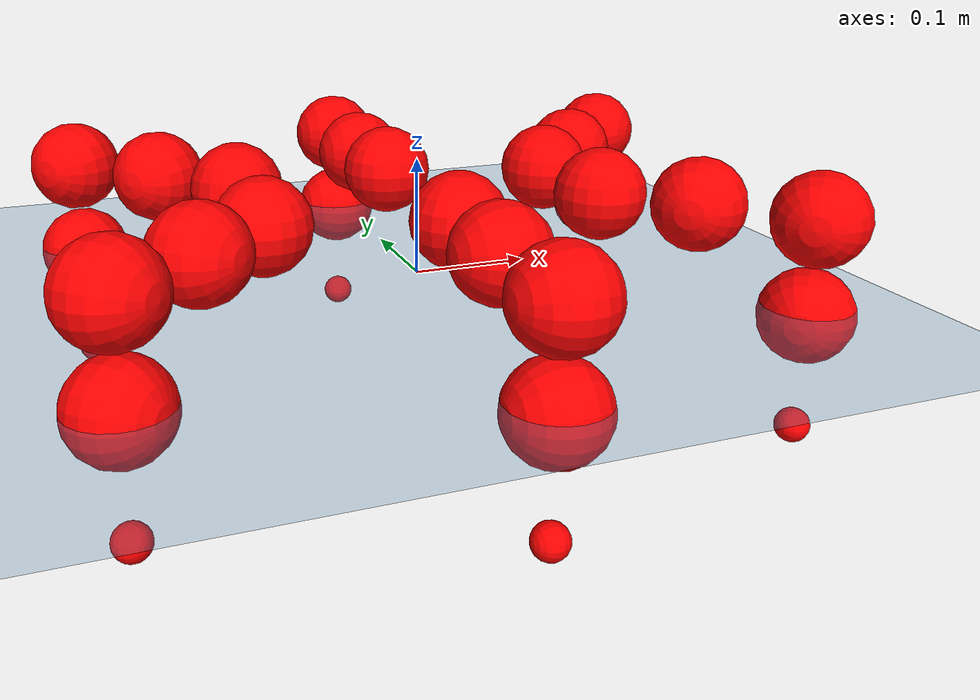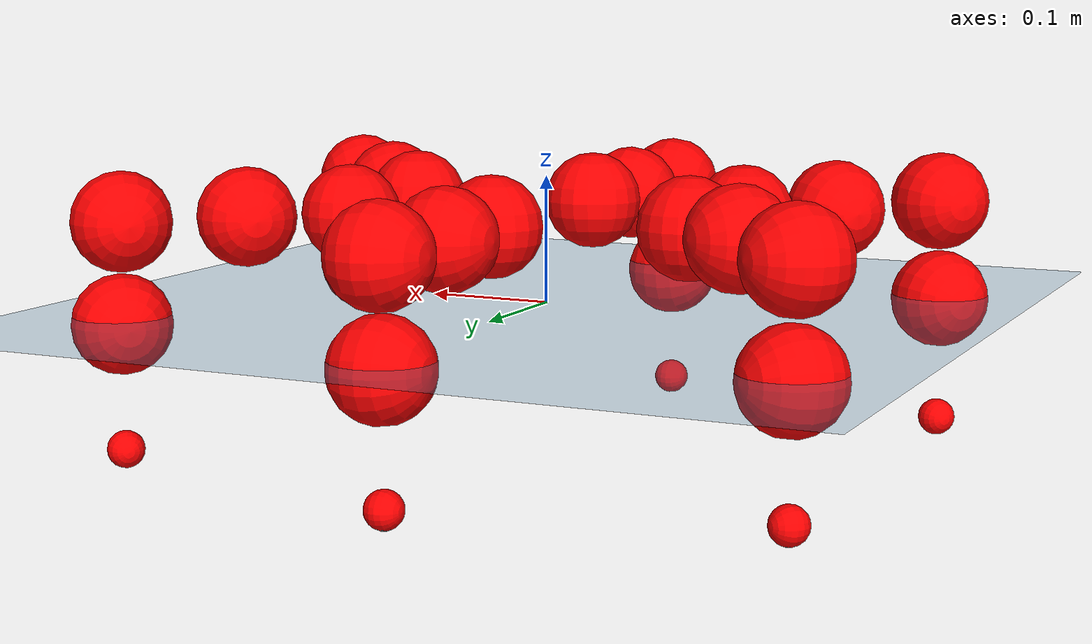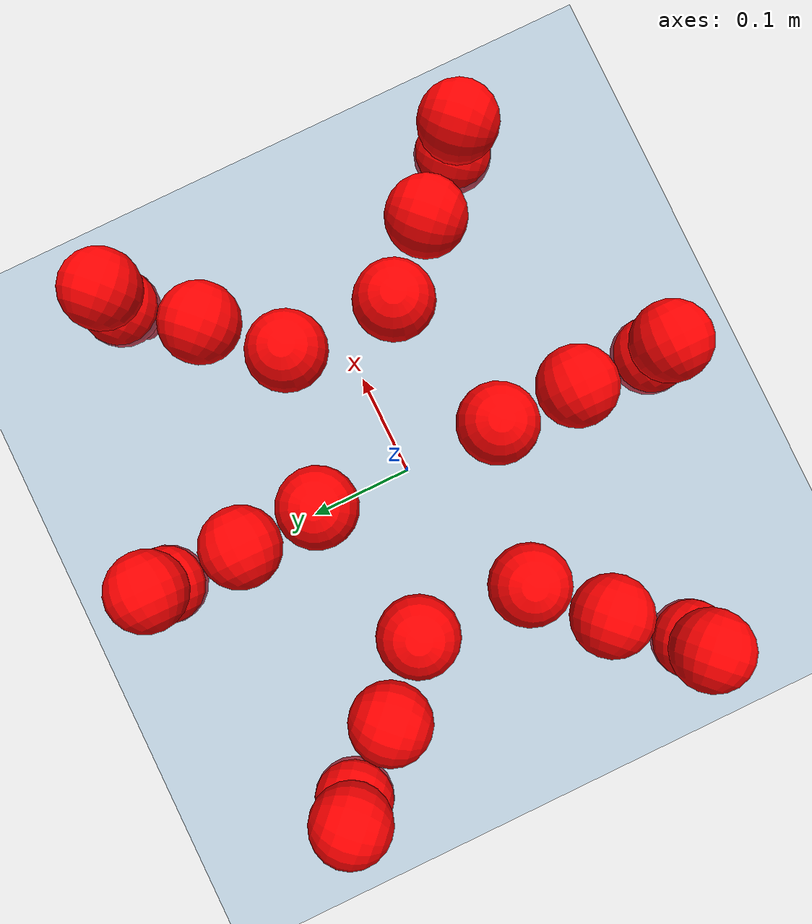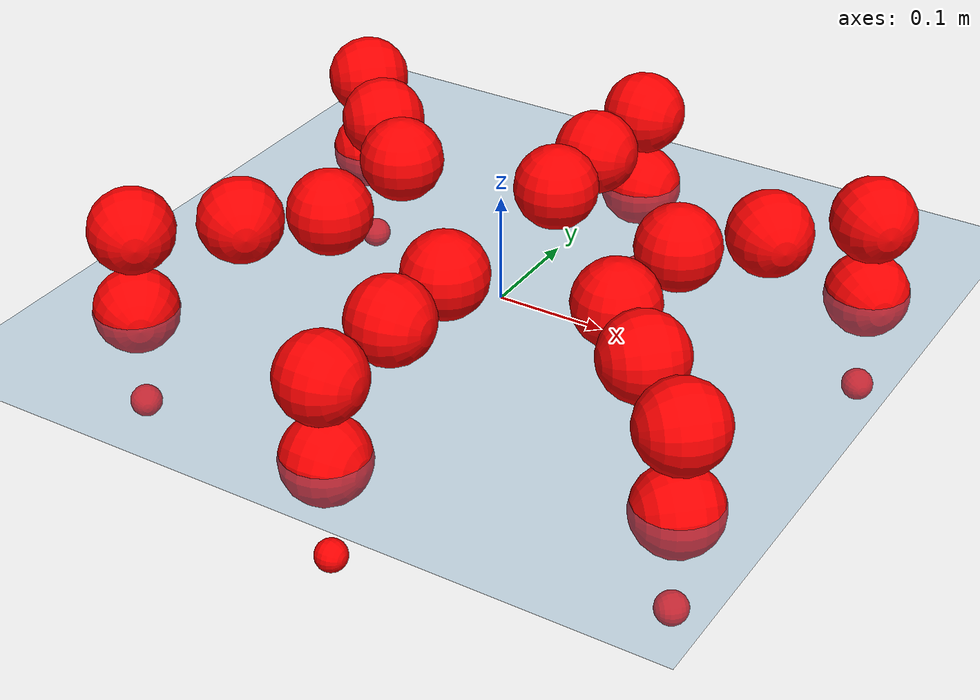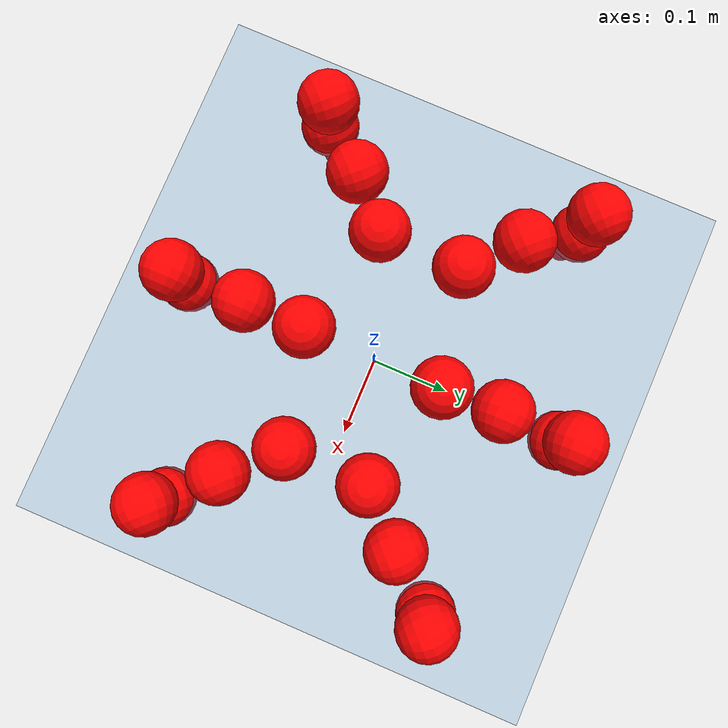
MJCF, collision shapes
<mujoco model="Golem">
  <compiler angle="radian" assetdir="assets" balanceinertia="true" inertiafromgeom="false"/>

  <option timestep="0.005" density="1.2" viscosity="2e-05"/>

  <size nkey="1"/>

  <visual>
    <quality shadowsize="8192"/>
    <map shadowclip="0.5"/>
  </visual>

  <default>
    <default class="/">
      <joint armature="0.01" damping="0.01" frictionloss="0.01"/>
      <geom contype="0" conaffinity="0" group="1" solref="-1000 -80"/>
      <site size="0.01 0.005 0.005" group="5"/>
      <general forcelimited="true" biastype="affine" gainprm="25" biasprm="0 -25 -0.5"/>
      <default class="visual">
        <geom type="mesh" group="2"/>
      </default>
      <default class="collision">
        <geom group="3"/>
      </default>
      <default class="foot">
        <geom size="0.01 0 0" condim="6" group="4" priority="1" solimp="0.015 1 0.01"/>
      </default>
      <default class="reward_collision_sphere">
        <geom group="5" rgba="1 0 0 1"/>
      </default>
    </default>
  </default>

  <asset>
    <texture type="skybox" colorspace="auto" name="//unnamed_texture_0" builtin="gradient" rgb1="0.95 0.95 0.95" rgb2="0.95 0.95 0.95" width="100" height="600"/>
    <texture type="2d" colorspace="auto" name="texplane" builtin="checker" rgb1="0.345 0.575 0.748" rgb2="0.345 0.575 0.748" markrgb="1 1 1" width="512" height="512"/>
    <material name="MatPlane" class="/" texture="texplane" texuniform="true" texrepeat="2 2" specular="0.9"/>
    <mesh name="body" class="/" file="body.stl" scale="0.001 0.001 0.001"/>
    <mesh name="coxa" class="/" file="coxa.stl" scale="0.001 0.001 0.001"/>
    <mesh name="femur" class="/" file="femur.stl" scale="0.001 0.001 0.001"/>
    <mesh name="tibia" class="/" file="tibia.stl" scale="0.001 0.001 0.001"/>
    <mesh name="tarsus" class="/" file="tarsus.stl" scale="0.001 0.001 0.001"/>
  </asset>

  <worldbody>
    <geom name="floor" class="/" size="100 100 0.125" type="plane" group="0" material="MatPlane"/>
    <light name="toplight_shadow" class="/" pos="0 0 5" dir="0.0990148 0.0990148 -0.990148" type="directional" ambient="0.04 0.04 0.04" diffuse="0.55 0.55 0.55" specular="0.12 0.12 0.12"/>
    <light name="toplight_fill" class="/" pos="0 0 5" dir="0.0990148 0.0990148 -0.990148" type="directional" castshadow="false" ambient="0.04 0.04 0.04" diffuse="0.3 0.3 0.3" specular="0.08 0.08 0.08"/>
    <body name="trunk" pos="-9.82033e-05 0.00062014 -0.0028121" quat="0.999999 0.000814144 0.000314984 -0.0010292">
      <inertial pos="0.00231139 -0.0022448 -0.00061944" quat="0.999983 0.00423082 0.00380992 0.00105989" mass="3.26324" diaginertia="0.00623057 0.0053342 0.0180989"/>
      <joint name="//unnamed_joint_0" type="free"/>
      <geom name="//unnamed_geom_1" class="/" pos="0 0 0.072066" quat="1 0 0 0" type="mesh" rgba="0.9 0.9 0.9 1" mesh="body"/>
      <site name="imu" class="/" pos="0.116266 0.0130912 0.12012" size="0.00977198"/>
      <camera name="track" class="/" pos="0 -1.78475 0" quat="0.707107 0.707107 0 0" mode="trackcom"/>
      <camera name="ego_camera" class="/" pos="0.118714 0 0.112603" quat="-0.5 -0.5 0.5 0.5"/>
      <body name="coxa_RR" pos="-0.163602 -0.0743807 0.0740919" quat="0.382819 -0.000612166 0.00011448 -0.923823">
        <inertial pos="0.00276739 0.00111805 -0.00236425" quat="0.999948 -0.00346178 0.00747969 0.00599687" mass="0.191069" diaginertia="0.00624461 0.00577999 0.0182099"/>
        <joint name="coxa_joint_RR" class="/" pos="0 0 0" axis="0.00169099 0.00157321 -0.999997" stiffness="0.00159785" range="-3.09958 3.11909" armature="0.00935991" damping="0" frictionloss="0.0105469"/>
        <geom name="//unnamed_geom_2" class="/" type="mesh" rgba="0.2 0.2 0.2 1" mesh="coxa"/>
        <geom name="//unnamed_geom_3" class="reward_collision_sphere" size="0.0390879" pos="-0.0273956 0 0"/>
        <body name="femur_RR" pos="0.0515221 -0.00166211 0.00112254" quat="0.499965 -0.5008 0.499571 0.499663">
          <inertial pos="0.000326798 0.00164686 0.00253781" quat="0.999903 -0.00224734 -0.011394 0.00773356" mass="0.178761" diaginertia="0.00636737 0.00533525 0.0176201"/>
          <joint name="femur_joint_RR" class="/" pos="0 0 0" axis="0.004447 -0.00223555 -0.999988" range="-3.11695 3.1157" armature="0.0109847" damping="0.010192" frictionloss="0.00987012"/>
          <geom name="//unnamed_geom_4" class="/" type="mesh" rgba="0.9 0.9 0.9 1" mesh="femur"/>
          <geom name="//unnamed_geom_5" class="reward_collision_sphere" size="0.0390879"/>
          <body name="tibia_RR" pos="-0.00284799 -0.0944739 0.000834629" quat="3.11972e-05 1 6.22221e-05 -0.000150423">
            <inertial pos="-0.000632333 0.00211797 -0.000504335" quat="1 0.000405241 -0.000148265 -0.000612854" mass="0.180892" diaginertia="0.00618112 0.00545133 0.0176895"/>
            <joint name="tibia_joint_RR" class="/" pos="0 0 0" axis="-0.00437526 -0.0110047 0.99993" range="-3.09881 3.13468" armature="0.00836351" damping="0.00985602" frictionloss="0.010342"/>
            <geom name="//unnamed_geom_6" class="/" type="mesh" rgba="0.2 0.2 0.2 1" mesh="tibia"/>
            <geom name="//unnamed_geom_7" class="reward_collision_sphere" size="0.0390879"/>
            <body name="tarsus_RR" pos="0.0796906 0.00285634 -0.00169821" quat="0.999999 -0.000525079 -0.000883292 0.000798543">
              <inertial pos="0.0573659 0.000919769 0.00288202" quat="0.500417 0.509099 0.497634 0.492707" mass="0.18123" diaginertia="0.00611731 0.00544248 0.0178274"/>
              <joint name="tarsus_joint_RR" class="/" pos="0 0 0" axis="0.014728 0.00216093 0.999889" range="-3.19178 3.15962" armature="0.00921967" damping="0.0167444" frictionloss="0.00931518"/>
              <geom name="//unnamed_geom_8" class="/" type="mesh" rgba="0.9 0.9 0.9 1" mesh="tarsus"/>
              <geom name="foot_1" class="foot" size="0.00883422" pos="0.102277 0 0" quat="0 -0.707107 0 0.707107"/>
              <geom name="//unnamed_geom_10" class="reward_collision_sphere" size="0.0390879"/>
              <geom name="//unnamed_geom_11" class="reward_collision_sphere" size="0.014658" pos="0.0981677 0 0"/>
              <site name="foot_1" class="foot" pos="0.102277 0 0" quat="0 -0.707107 0 0.707107" size="0.00977198"/>
            </body>
          </body>
        </body>
      </body>
      <body name="coxa_RM" pos="0.00119968 -0.12025 0.0747823" quat="0.707047 -2.84193e-05 -9.12105e-06 -0.707167">
        <inertial pos="-0.000813967 -0.000199127 -0.0024761" quat="0.999971 0.000678349 -0.00412516 0.00639648" mass="0.184312" diaginertia="0.00639589 0.00590427 0.0190732"/>
        <joint name="coxa_joint_RM" class="/" pos="0 0 0" axis="-0.00579224 -0.00389307 -0.999976" range="-3.1407 3.0876" armature="0.00946994" damping="0.0126096" frictionloss="0.0111509"/>
        <geom name="//unnamed_geom_12" class="/" type="mesh" rgba="0.2 0.2 0.2 1" mesh="coxa"/>
        <geom name="//unnamed_geom_13" class="reward_collision_sphere" size="0.0390879" pos="-0.0273956 0 0"/>
        <body name="femur_RM" pos="0.0532339 -0.000541513 -0.00158574" quat="0.499681 -0.500047 0.499842 0.500429">
          <inertial pos="8.75042e-05 0.00273682 0.000535398" quat="0.999995 0.0024576 -0.00200902 0.00058777" mass="0.193494" diaginertia="0.00617658 0.00570362 0.0176472"/>
          <joint name="femur_joint_RM" class="/" pos="0 0 0" axis="-0.000112221 -8.53196e-05 -1" range="-3.08635 3.18701" armature="0.0112005" damping="0.0195892" frictionloss="0.0109276"/>
          <geom name="//unnamed_geom_14" class="/" type="mesh" rgba="0.9 0.9 0.9 1" mesh="femur"/>
          <geom name="//unnamed_geom_15" class="reward_collision_sphere" size="0.0390879"/>
          <body name="tibia_RM" pos="-5.41127e-05 -0.096119 2.00009e-05" quat="-0.00031925 1 -0.000478638 -0.000276492">
            <inertial pos="-0.00101887 6.75453e-05 0.00281138" quat="0.999999 -4.47912e-05 0.000633652 0.00121182" mass="0.191372" diaginertia="0.0063748 0.00561639 0.0175376"/>
            <joint name="tibia_joint_RM" class="/" pos="0 0 0" axis="0.00885976 0.00212691 0.999958" range="-3.1021 3.19614" armature="0.0088248" damping="0.0194718" frictionloss="0.0108001"/>
            <geom name="//unnamed_geom_16" class="/" type="mesh" rgba="0.2 0.2 0.2 1" mesh="tibia"/>
            <geom name="//unnamed_geom_17" class="reward_collision_sphere" size="0.0390879"/>
            <body name="tarsus_RM" pos="0.0792963 -0.00103667 0.000450007" quat="0.999999 0.00115114 -0.000748869 -0.000425365">
              <inertial pos="0.0551537 -0.00117368 0.000541865" quat="0.499868 0.500111 0.500184 0.499837" mass="0.198317" diaginertia="0.00659214 0.00580376 0.0185602"/>
              <joint name="tarsus_joint_RM" class="/" pos="0 0 0" axis="-0.0077444 -0.00337101 0.999964" range="-3.10825 3.14192" armature="0.00869701" damping="0.0164659" frictionloss="0.00983406"/>
              <geom name="//unnamed_geom_18" class="/" type="mesh" rgba="0.9 0.9 0.9 1" mesh="tarsus"/>
              <geom name="foot_2" class="foot" size="0.00874495" pos="0.102277 0 0" quat="0 -0.707107 0 0.707107"/>
              <geom name="//unnamed_geom_20" class="reward_collision_sphere" size="0.0390879"/>
              <geom name="//unnamed_geom_21" class="reward_collision_sphere" size="0.014658" pos="0.0981677 0 0"/>
              <site name="foot_2" class="foot" pos="0.102277 0 0" quat="0 -0.707107 0 0.707107" size="0.00977198"/>
            </body>
          </body>
        </body>
      </body>
      <body name="coxa_RF" pos="0.164094 -0.075368 0.0739712" quat="0.92407 -0.000566813 0.000332835 -0.382222">
        <inertial pos="-0.00193003 -0.0011485 -0.00261808" quat="0.999903 0.0027515 0.00423671 0.0129519" mass="0.185041" diaginertia="0.00638895 0.00566246 0.0185081"/>
        <joint name="coxa_joint_RF" class="/" pos="0 0 0" axis="0.000276346 -0.000767344 -1" range="-3.16067 3.08229" armature="0.0100267" damping="0.0156333" frictionloss="0.0108984"/>
        <geom name="//unnamed_geom_22" class="/" type="mesh" rgba="0.2 0.2 0.2 1" mesh="coxa"/>
        <geom name="//unnamed_geom_23" class="reward_collision_sphere" size="0.0390879" pos="-0.0273956 0 0"/>
        <body name="femur_RF" pos="0.0556876 -0.00205696 0.00119335" quat="0.500748 -0.500069 0.500406 0.498775">
          <inertial pos="-0.00067165 -8.35767e-05 -0.00031157" quat="0.999917 0.0119771 0.0003187 -0.00477651" mass="0.186469" diaginertia="0.00613626 0.00552953 0.0174562"/>
          <joint name="femur_joint_RF" class="/" pos="0 0 0" axis="0.00345393 -0.00721843 -0.999968" stiffness="0.000288636" range="-3.09588 3.14308" armature="0.00932954" damping="0.00917565" frictionloss="0.00929203"/>
          <geom name="//unnamed_geom_24" class="/" type="mesh" rgba="0.9 0.9 0.9 1" mesh="femur"/>
          <geom name="//unnamed_geom_25" class="reward_collision_sphere" size="0.0390879"/>
          <body name="tibia_RF" pos="0.0017403 -0.094368 0.00168455" quat="-0.000283542 1 0.00013632 -0.000783297">
            <inertial pos="0.000449399 -0.00211491 -0.00270444" quat="0.99993 -0.00831779 -0.00754699 -0.00369117" mass="0.188471" diaginertia="0.00613554 0.00558004 0.0182008"/>
            <joint name="tibia_joint_RF" class="/" pos="0 0 0" axis="0.0102109 -0.000875772 0.999947" stiffness="0.0141213" range="-3.1873 3.12652" armature="0.00942626" damping="0.0250209" frictionloss="0.00844009"/>
            <geom name="//unnamed_geom_26" class="/" type="mesh" rgba="0.2 0.2 0.2 1" mesh="tibia"/>
            <geom name="//unnamed_geom_27" class="reward_collision_sphere" size="0.0390879"/>
            <body name="tarsus_RF" pos="0.0807719 -0.00250103 -0.000953069" quat="1 3.66463e-05 -1.37751e-05 -1.8189e-05">
              <inertial pos="0.0556219 -0.000369403 0.00107438" quat="0.495753 0.497346 0.50167 0.505175" mass="0.179366" diaginertia="0.0059984 0.00531796 0.0174239"/>
              <joint name="tarsus_joint_RF" class="/" pos="0 0 0" axis="-0.00886801 0.000129797 0.999961" stiffness="0.00392018" range="-3.12431 3.14029" armature="0.00935052" damping="0.00154515" frictionloss="0.0110648"/>
              <geom name="//unnamed_geom_28" class="/" type="mesh" rgba="0.9 0.9 0.9 1" mesh="tarsus"/>
              <geom name="foot_3" class="foot" size="0.0103752" pos="0.102277 0 0" quat="0 -0.707107 0 0.707107"/>
              <geom name="//unnamed_geom_30" class="reward_collision_sphere" size="0.0390879"/>
              <geom name="//unnamed_geom_31" class="reward_collision_sphere" size="0.014658" pos="0.0981677 0 0"/>
              <site name="foot_3" class="foot" pos="0.102277 0 0" quat="0 -0.707107 0 0.707107" size="0.00977198"/>
            </body>
          </body>
        </body>
      </body>
      <body name="coxa_LR" pos="-0.162011 0.0760431 0.0760306" quat="0.382531 -0.000714165 -0.00113058 0.923942">
        <inertial pos="-0.00227527 0.00246671 -0.00225767" quat="0.999999 -0.000670268 -0.000769141 -0.00028677" mass="0.187786" diaginertia="0.00623674 0.00543296 0.0179714"/>
        <joint name="coxa_joint_LR" class="/" pos="0 0 0" axis="0.00302331 0.0162586 -0.999863" stiffness="0.0129182" range="-3.18288 3.18456" armature="0.00949435" damping="0.0164537" frictionloss="0.0111553"/>
        <geom name="//unnamed_geom_32" class="/" type="mesh" rgba="0.2 0.2 0.2 1" mesh="coxa"/>
        <geom name="//unnamed_geom_33" class="reward_collision_sphere" size="0.0390879" pos="-0.0273956 0 0"/>
        <body name="femur_LR" pos="0.0534918 0.00187733 0.00237871" quat="0.500387 -0.49936 0.500065 0.500187">
          <inertial pos="-0.00123467 0.0027628 0.00118465" quat="0.999953 0.00460093 0.00768033 0.00359113" mass="0.180908" diaginertia="0.00655327 0.00557074 0.0174147"/>
          <joint name="femur_joint_LR" class="/" pos="0 0 0" axis="-0.00196712 -0.00502467 0.999985" range="-3.18662 3.17354" armature="0.0103393" damping="0.00695513" frictionloss="0.00974905"/>
          <geom name="//unnamed_geom_34" class="/" type="mesh" rgba="0.9 0.9 0.9 1" mesh="femur"/>
          <geom name="//unnamed_geom_35" class="reward_collision_sphere" size="0.0390879"/>
          <body name="tibia_LR" pos="0.00138756 -0.097026 -0.00331999" quat="0.000216751 1 -0.000682523 0.000148612">
            <inertial pos="-0.00249097 0.00142014 0.00287257" quat="0.999899 0.007585 -0.0104959 0.00578687" mass="0.192328" diaginertia="0.00633712 0.00582255 0.0176904"/>
            <joint name="tibia_joint_LR" class="/" pos="0 0 0" axis="-0.00239416 0.00603533 -0.999979" range="-3.10193 3.19539" armature="0.00833588" damping="0" frictionloss="0.00977179"/>
            <geom name="//unnamed_geom_36" class="/" type="mesh" rgba="0.2 0.2 0.2 1" mesh="tibia"/>
            <geom name="//unnamed_geom_37" class="reward_collision_sphere" size="0.0390879"/>
            <body name="tarsus_LR" pos="0.0808853 -0.00121672 0.000980286" quat="1 2.36165e-05 -8.16914e-06 -1.70079e-05">
              <inertial pos="0.0543268 -0.00232954 -0.000352818" quat="0.500002 0.500019 0.499962 0.500017" mass="0.178578" diaginertia="0.0062588 0.00565247 0.0183819"/>
              <joint name="tarsus_joint_LR" class="/" pos="0 0 0" axis="0.00116652 -0.000328933 -0.999999" stiffness="0.00541273" range="-3.13989 3.19469" armature="0.0096607" damping="0.00502256" frictionloss="0.00844344"/>
              <geom name="//unnamed_geom_38" class="/" type="mesh" rgba="0.9 0.9 0.9 1" mesh="tarsus"/>
              <geom name="foot_4" class="foot" size="0.0108252" pos="0.102277 0 0" quat="0.707107 0 -0.707107 0"/>
              <geom name="//unnamed_geom_40" class="reward_collision_sphere" size="0.0390879"/>
              <geom name="//unnamed_geom_41" class="reward_collision_sphere" size="0.014658" pos="0.0981677 0 0"/>
              <site name="foot_4" class="foot" pos="0.102277 0 0" quat="0.707107 0 -0.707107 0" size="0.00977198"/>
            </body>
          </body>
        </body>
      </body>
      <body name="coxa_LM" pos="0.0027594 0.116938 0.0732493" quat="0.707162 4.47748e-05 7.41147e-05 0.707052">
        <inertial pos="0.000298048 -0.000329432 -0.00186969" quat="0.999998 -0.00110487 0.000882881 0.00152486" mass="0.183916" diaginertia="0.00658378 0.00567628 0.0182058"/>
        <joint name="coxa_joint_LM" class="/" pos="0 0 0" axis="0.0135508 -0.00122856 -0.999907" range="-3.13106 3.1513" armature="0.0104402" damping="0.00514546" frictionloss="0.00967094"/>
        <geom name="//unnamed_geom_42" class="/" type="mesh" rgba="0.2 0.2 0.2 1" mesh="coxa"/>
        <geom name="//unnamed_geom_43" class="reward_collision_sphere" size="0.0390879" pos="-0.0273956 0 0"/>
        <body name="femur_LM" pos="0.0509916 0.00257645 -0.000407352" quat="0.49983 -0.499425 0.500518 0.500227">
          <inertial pos="-0.00274212 0.000294922 -0.00141543" quat="0.999901 0.00983378 0.00221201 0.00976968" mass="0.18024" diaginertia="0.00618457 0.00543702 0.0175"/>
          <joint name="femur_joint_LM" class="/" pos="0 0 0" axis="0.0104399 0.00234659 0.999943" stiffness="0.00553857" range="-3.13273 3.1077" armature="0.00854732" damping="0" frictionloss="0.00849535"/>
          <geom name="//unnamed_geom_44" class="/" type="mesh" rgba="0.9 0.9 0.9 1" mesh="femur"/>
          <geom name="//unnamed_geom_45" class="reward_collision_sphere" size="0.0390879"/>
          <body name="tibia_LM" pos="-0.000510409 -0.0938997 -0.00050886" quat="-0.000331349 0.999999 0.000389588 0.00116125">
            <inertial pos="0.00229107 0.000362089 -0.000245762" quat="0.999996 0.00202373 0.0011953 -0.00159265" mass="0.189985" diaginertia="0.00627342 0.00554214 0.0177457"/>
            <joint name="tibia_joint_LM" class="/" pos="0 0 0" axis="0.0113948 0.00793333 -0.999904" range="-3.08665 3.08859" armature="0.010155" damping="0.00468296" frictionloss="0.0110918"/>
            <geom name="//unnamed_geom_46" class="/" type="mesh" rgba="0.2 0.2 0.2 1" mesh="tibia"/>
            <geom name="//unnamed_geom_47" class="reward_collision_sphere" size="0.0390879"/>
            <body name="tarsus_LM" pos="0.0785084 -0.00168768 0.000290969" quat="1 -0.000172946 7.04128e-06 0.000173098">
              <inertial pos="0.0524415 -0.00217264 0.000423952" quat="0.49969 0.498153 0.50962 0.492383" mass="0.18391" diaginertia="0.00621387 0.00550517 0.0175022"/>
              <joint name="tarsus_joint_LM" class="/" pos="0 0 0" axis="-0.000338069 0.0139587 -0.999903" stiffness="0.00993237" range="-3.1395 3.14422" armature="0.0098073" damping="0.0167544" frictionloss="0.010565"/>
              <geom name="//unnamed_geom_48" class="/" type="mesh" rgba="0.9 0.9 0.9 1" mesh="tarsus"/>
              <geom name="foot_5" class="foot" size="0.0108677" pos="0.102277 0 0" quat="0.707107 0 -0.707107 0"/>
              <geom name="//unnamed_geom_50" class="reward_collision_sphere" size="0.0390879"/>
              <geom name="//unnamed_geom_51" class="reward_collision_sphere" size="0.014658" pos="0.0981677 0 0"/>
              <site name="foot_5" class="foot" pos="0.102277 0 0" quat="0.707107 0 -0.707107 0" size="0.00977198"/>
            </body>
          </body>
        </body>
      </body>
      <body name="coxa_LF" pos="0.164719 0.072759 0.0719809" quat="0.923899 -0.000415766 0.000357691 0.382636">
        <inertial pos="-0.0019446 -0.00119028 -0.00275914" quat="0.99999 -0.000138769 -0.0027014 0.00353346" mass="0.180186" diaginertia="0.00614074 0.00537141 0.0180922"/>
        <joint name="coxa_joint_LF" class="/" pos="0 0 0" axis="-0.0065624 -0.00386055 -0.999971" range="-3.19265 3.14215" armature="0.0105691" damping="0.0145444" frictionloss="0.00840488"/>
        <geom name="//unnamed_geom_52" class="/" type="mesh" rgba="0.2 0.2 0.2 1" mesh="coxa"/>
        <geom name="//unnamed_geom_53" class="reward_collision_sphere" size="0.0390879" pos="-0.0273956 0 0"/>
        <body name="femur_LF" pos="0.0563231 0.00206004 0.00112449" quat="0.499742 -0.501134 0.49957 0.499553">
          <inertial pos="-7.72032e-05 -0.00288861 0.000843711" quat="1 0.000161064 0.000541059 -2.58234e-05" mass="0.183273" diaginertia="0.00601323 0.0054993 0.0175167"/>
          <joint name="femur_joint_LF" class="/" pos="0 0 0" axis="0.00879473 -0.00914723 0.999919" range="-3.18625 3.19432" armature="0.00964821" damping="0.00107205" frictionloss="0.00978898"/>
          <geom name="//unnamed_geom_54" class="/" type="mesh" rgba="0.9 0.9 0.9 1" mesh="femur"/>
          <geom name="//unnamed_geom_55" class="reward_collision_sphere" size="0.0390879"/>
          <body name="tibia_LF" pos="-0.000157335 -0.0968248 0.000868809" quat="0.000699253 0.999999 -0.000703012 -0.000819753">
            <inertial pos="0.00264525 0.00242838 -0.00248038" quat="0.999988 -0.00483646 0.000188595 0.00116442" mass="0.192341" diaginertia="0.00610058 0.00567018 0.0174162"/>
            <joint name="tibia_joint_LF" class="/" pos="0 0 0" axis="-0.00989807 0.0080058 -0.999919" stiffness="0.00429648" range="-3.16004 3.08421" armature="0.00896071" damping="0.0108417" frictionloss="0.0101029"/>
            <geom name="//unnamed_geom_56" class="/" type="mesh" rgba="0.2 0.2 0.2 1" mesh="tibia"/>
            <geom name="//unnamed_geom_57" class="reward_collision_sphere" size="0.0390879"/>
            <body name="tarsus_LF" pos="0.078401 0.00191681 -0.00289327" quat="1 -0.000124855 -6.3703e-05 -9.82756e-05">
              <inertial pos="0.0542911 0.000936857 -0.00056663" quat="0.498976 0.497275 0.499283 0.504438" mass="0.182062" diaginertia="0.00626801 0.00565639 0.0183273"/>
              <joint name="tarsus_joint_LF" class="/" pos="0 0 0" axis="0.00276543 -0.000724958 -0.999996" stiffness="0.0270804" range="-3.09326 3.08264" armature="0.00956155" damping="0.032167" frictionloss="0.00867578"/>
              <geom name="//unnamed_geom_58" class="/" type="mesh" rgba="0.9 0.9 0.9 1" mesh="tarsus"/>
              <geom name="foot_6" class="foot" size="0.0101369" pos="0.102277 0 0" quat="0.707107 0 -0.707107 0"/>
              <geom name="//unnamed_geom_60" class="reward_collision_sphere" size="0.0390879"/>
              <geom name="//unnamed_geom_61" class="reward_collision_sphere" size="0.014658" pos="0.0981677 0 0"/>
              <site name="foot_6" class="foot" pos="0.102277 0 0" quat="0.707107 0 -0.707107 0" size="0.00977198"/>
            </body>
          </body>
        </body>
      </body>
    </body>
  </worldbody>

  <contact>
    <pair class="/" geom1="floor" geom2="foot_1" name="//unnamed_contact_0"/>
    <pair class="/" geom1="floor" geom2="foot_2" name="//unnamed_contact_1"/>
    <pair class="/" geom1="floor" geom2="foot_3" name="//unnamed_contact_2"/>
    <pair class="/" geom1="floor" geom2="foot_4" name="//unnamed_contact_3"/>
    <pair class="/" geom1="floor" geom2="foot_5" name="//unnamed_contact_4"/>
    <pair class="/" geom1="floor" geom2="foot_6" name="//unnamed_contact_5"/>
  </contact>

  <actuator>
    <general name="coxa_joint_RR" class="/" joint="coxa_joint_RR" forcerange="-7.2202 7.2202" gainprm="23.1929" biasprm="0 -23.1929 -0.527948"/>
    <general name="femur_joint_RR" class="/" joint="femur_joint_RR" forcerange="-7.30048 7.30048" gainprm="23.1929" biasprm="0 -23.1929 -0.527948"/>
    <general name="tibia_joint_RR" class="/" joint="tibia_joint_RR" forcerange="-7.00953 7.00953" gainprm="23.1929" biasprm="0 -23.1929 -0.527948"/>
    <general name="tarsus_joint_RR" class="/" joint="tarsus_joint_RR" forcerange="-7.85755 7.85755" gainprm="23.1929" biasprm="0 -23.1929 -0.527948"/>
    <general name="coxa_joint_RM" class="/" joint="coxa_joint_RM" forcerange="-6.66392 6.66392" gainprm="23.1929" biasprm="0 -23.1929 -0.527948"/>
    <general name="femur_joint_RM" class="/" joint="femur_joint_RM" forcerange="-7.84994 7.84994" gainprm="23.1929" biasprm="0 -23.1929 -0.527948"/>
    <general name="tibia_joint_RM" class="/" joint="tibia_joint_RM" forcerange="-7.36753 7.36753" gainprm="23.1929" biasprm="0 -23.1929 -0.527948"/>
    <general name="tarsus_joint_RM" class="/" joint="tarsus_joint_RM" forcerange="-7.66845 7.66845" gainprm="23.1929" biasprm="0 -23.1929 -0.527948"/>
    <general name="coxa_joint_RF" class="/" joint="coxa_joint_RF" forcerange="-6.40886 6.40886" gainprm="23.1929" biasprm="0 -23.1929 -0.527948"/>
    <general name="femur_joint_RF" class="/" joint="femur_joint_RF" forcerange="-6.90419 6.90419" gainprm="23.1929" biasprm="0 -23.1929 -0.527948"/>
    <general name="tibia_joint_RF" class="/" joint="tibia_joint_RF" forcerange="-7.518 7.518" gainprm="23.1929" biasprm="0 -23.1929 -0.527948"/>
    <general name="tarsus_joint_RF" class="/" joint="tarsus_joint_RF" forcerange="-6.95943 6.95943" gainprm="23.1929" biasprm="0 -23.1929 -0.527948"/>
    <general name="coxa_joint_LR" class="/" joint="coxa_joint_LR" forcerange="-7.27412 7.27412" gainprm="23.1929" biasprm="0 -23.1929 -0.527948"/>
    <general name="femur_joint_LR" class="/" joint="femur_joint_LR" forcerange="-7.16444 7.16444" gainprm="23.1929" biasprm="0 -23.1929 -0.527948"/>
    <general name="tibia_joint_LR" class="/" joint="tibia_joint_LR" forcerange="-7.41637 7.41637" gainprm="23.1929" biasprm="0 -23.1929 -0.527948"/>
    <general name="tarsus_joint_LR" class="/" joint="tarsus_joint_LR" forcerange="-6.94783 6.94783" gainprm="23.1929" biasprm="0 -23.1929 -0.527948"/>
    <general name="coxa_joint_LM" class="/" joint="coxa_joint_LM" forcerange="-7.15052 7.15052" gainprm="23.1929" biasprm="0 -23.1929 -0.527948"/>
    <general name="femur_joint_LM" class="/" joint="femur_joint_LM" forcerange="-7.2303 7.2303" gainprm="23.1929" biasprm="0 -23.1929 -0.527948"/>
    <general name="tibia_joint_LM" class="/" joint="tibia_joint_LM" forcerange="-7.18748 7.18748" gainprm="23.1929" biasprm="0 -23.1929 -0.527948"/>
    <general name="tarsus_joint_LM" class="/" joint="tarsus_joint_LM" forcerange="-7.63145 7.63145" gainprm="23.1929" biasprm="0 -23.1929 -0.527948"/>
    <general name="coxa_joint_LF" class="/" joint="coxa_joint_LF" forcerange="-6.45918 6.45918" gainprm="23.1929" biasprm="0 -23.1929 -0.527948"/>
    <general name="femur_joint_LF" class="/" joint="femur_joint_LF" forcerange="-7.05391 7.05391" gainprm="23.1929" biasprm="0 -23.1929 -0.527948"/>
    <general name="tibia_joint_LF" class="/" joint="tibia_joint_LF" forcerange="-7.27552 7.27552" gainprm="23.1929" biasprm="0 -23.1929 -0.527948"/>
    <general name="tarsus_joint_LF" class="/" joint="tarsus_joint_LF" forcerange="-7.17006 7.17006" gainprm="23.1929" biasprm="0 -23.1929 -0.527948"/>
  </actuator>

  <sensor>
    <gyro site="imu" name="imu_angular_velocity"/>
    <velocimeter site="imu" name="imu_linear_velocity"/>
    <framelinvel objtype="site" objname="foot_1" name="foot_1_global_linear_velocity"/>
    <framelinvel objtype="site" objname="foot_2" name="foot_2_global_linear_velocity"/>
    <framelinvel objtype="site" objname="foot_3" name="foot_3_global_linear_velocity"/>
    <framelinvel objtype="site" objname="foot_4" name="foot_4_global_linear_velocity"/>
    <framelinvel objtype="site" objname="foot_5" name="foot_5_global_linear_velocity"/>
    <framelinvel objtype="site" objname="foot_6" name="foot_6_global_linear_velocity"/>
  </sensor>

  <keyframe>
    <key name="home" qpos="0 0 0.1457 1 0 0 0 0 0 0 0 0 0 0 0 0 0 0 0 0 0 0 0 0 0 0 0 0 0 0 0"/>
  </keyframe>
</mujoco>
